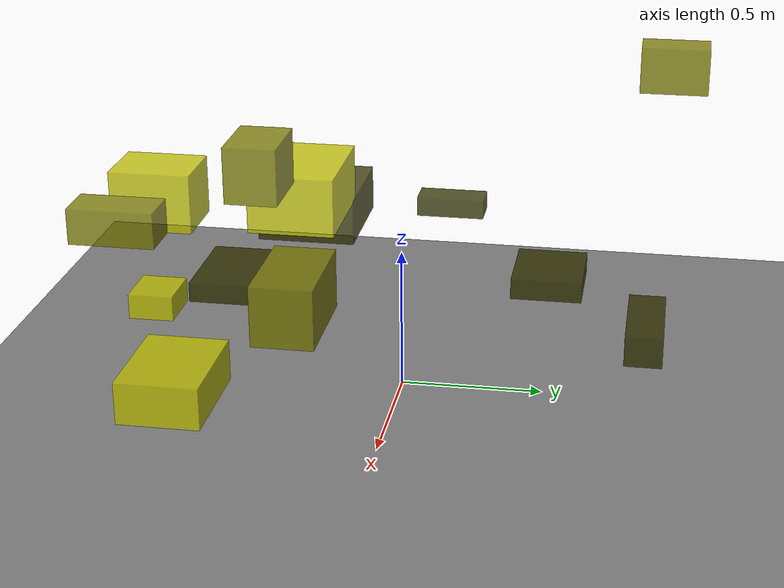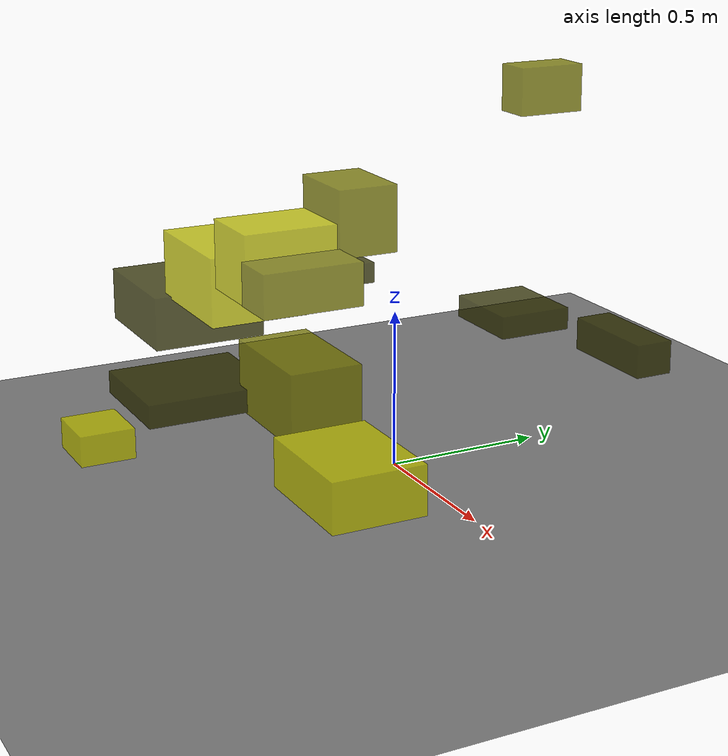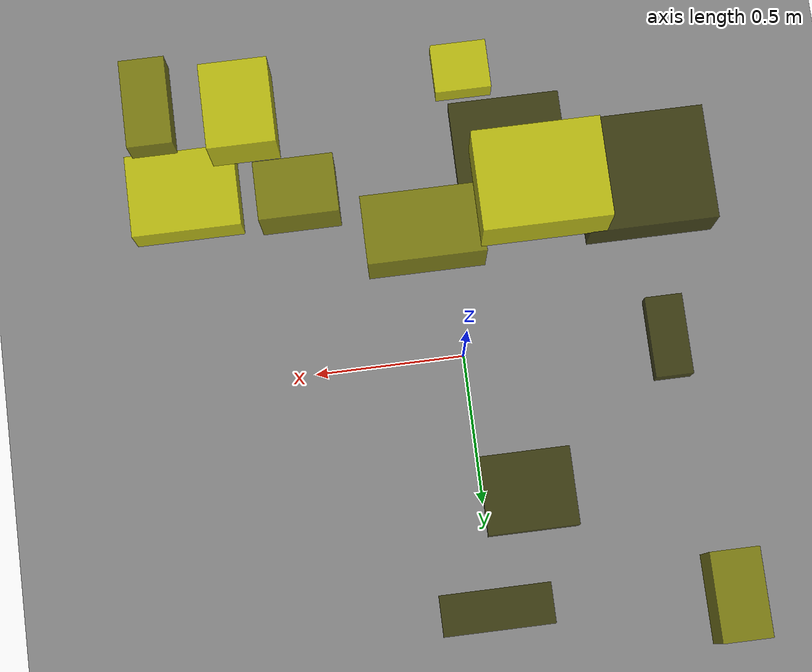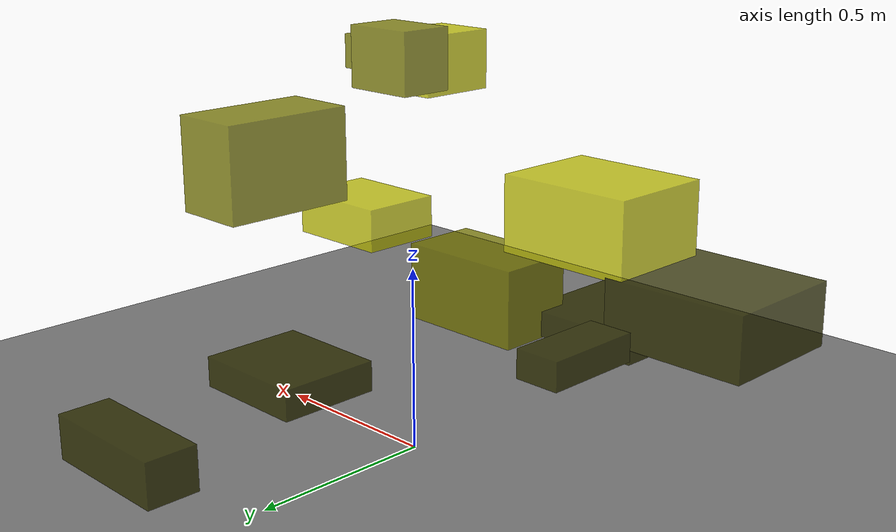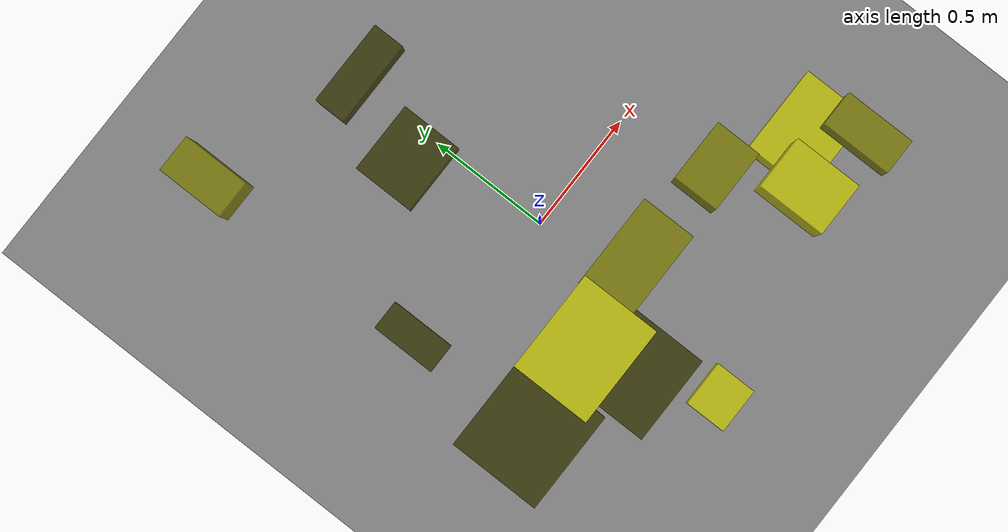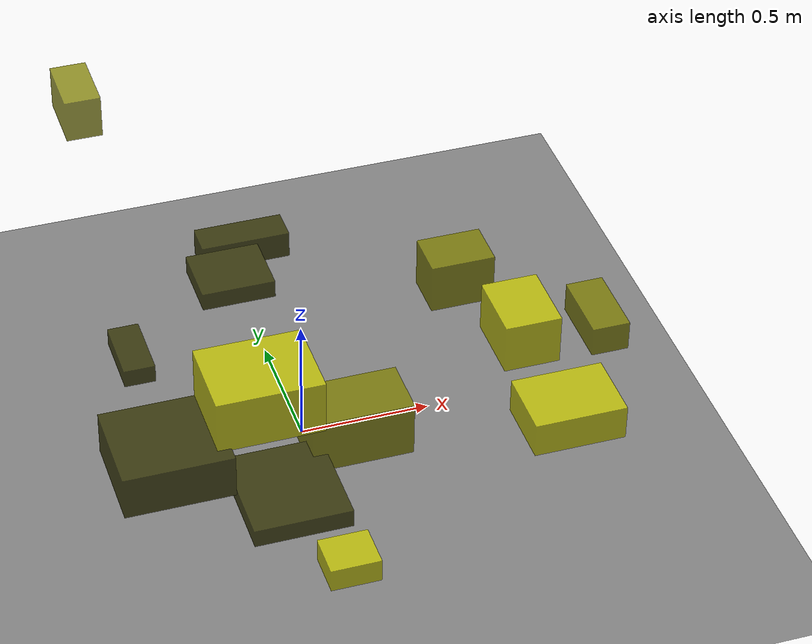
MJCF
<?xml version="1.0"?>
<mujoco model="obstacle_scene">
  <compiler angle="radian" coordinate="local"/>
  <option timestep="0.001" gravity="0 0 -9.81"/>

  <asset>
    <material name="obstacle_mat" rgba="0.8 0.8 0.0 0.8"/>
    <material name="ground_mat" rgba="0.5 0.5 0.5 1"/>
  </asset>

  <worldbody>
    <!-- Ground plane -->
    <geom name="ground" type="plane" size="3 3 0.1" material="ground_mat"/>

    <!-- Obstacles -->
    <body name="obstacle_0" pos="-0.619248 0.089235 0.459467">
      <geom name="obs_0" type="box" size="0.057931 0.126436 0.035312" rgba="0.2 0.2 0.0 0.8"/>
    </body>
    <body name="obstacle_1" pos="0.453727 -0.377582 0.956206">
      <geom name="obs_1" type="box" size="0.114082 0.084642 0.092469" rgba="0.5 0.5 0.0 0.8"/>
    </body>
    <body name="obstacle_2" pos="-0.104859 -0.929335 0.216794">
      <geom name="obs_2" type="box" size="0.092535 0.082382 0.046133" rgba="0.8 0.8 0.0 0.8"/>
    </body>
    <body name="obstacle_3" pos="-0.625526 -0.441905 0.429522">
      <geom name="obs_3" type="box" size="0.202136 0.183112 0.085779" rgba="0.2 0.2 0.0 0.8"/>
    </body>
    <body name="obstacle_4" pos="0.860805 -0.705431 0.904318">
      <geom name="obs_4" type="box" size="0.066286 0.131071 0.055551" rgba="0.5 0.5 0.0 0.8"/>
    </body>
    <body name="obstacle_5" pos="0.835993 -0.571314 0.373949">
      <geom name="obs_5" type="box" size="0.173706 0.131604 0.069062" rgba="0.8 0.8 0.0 0.8"/>
    </body>
    <body name="obstacle_6" pos="0.010847 0.852458 0.270414">
      <geom name="obs_6" type="box" size="0.175937 0.064428 0.055174" rgba="0.2 0.2 0.0 0.8"/>
    </body>
    <body name="obstacle_7" pos="0.090781 -0.367771 0.344892">
      <geom name="obs_7" type="box" size="0.190231 0.111593 0.111082" rgba="0.5 0.5 0.0 0.8"/>
    </body>
    <body name="obstacle_8" pos="-0.276257 -0.415075 0.614485">
      <geom name="obs_8" type="box" size="0.198026 0.156274 0.106581" rgba="0.8 0.8 0.0 0.8"/>
    </body>
    <body name="obstacle_9" pos="-0.129153 0.506214 0.395277">
      <geom name="obs_9" type="box" size="0.142059 0.122507 0.036269" rgba="0.2 0.2 0.0 0.8"/>
    </body>
    <body name="obstacle_10" pos="-0.601687 0.901285 1.039851">
      <geom name="obs_10" type="box" size="0.067858 0.121807 0.083808" rgba="0.5 0.5 0.0 0.8"/>
    </body>
    <body name="obstacle_11" pos="0.596324 -0.658962 0.902870">
      <geom name="obs_11" type="box" size="0.100152 0.126763 0.093069" rgba="0.8 0.8 0.0 0.8"/>
    </body>
    <body name="obstacle_12" pos="-0.225900 -0.590560 0.274552">
      <geom name="obs_12" type="box" size="0.181095 0.199995 0.035850" rgba="0.2 0.2 0.0 0.8"/>
    </body>
  </worldbody>
</mujoco>
